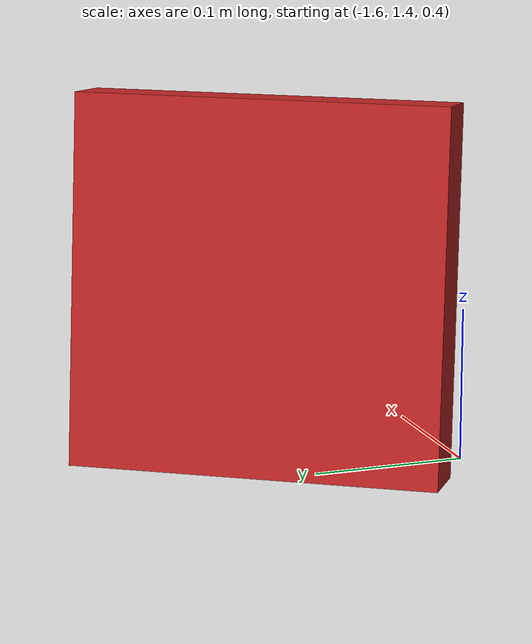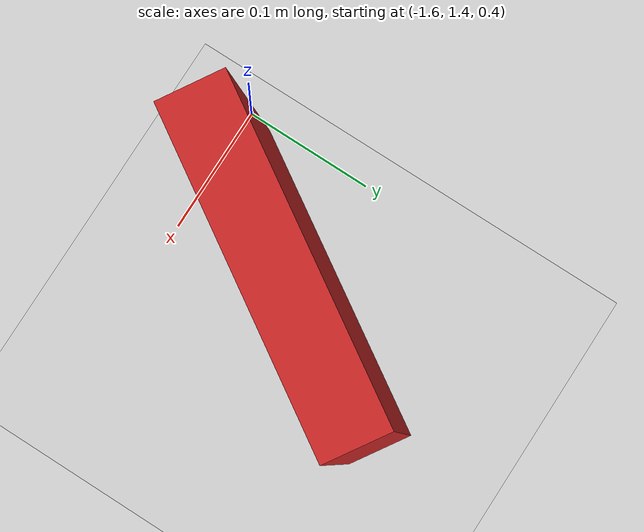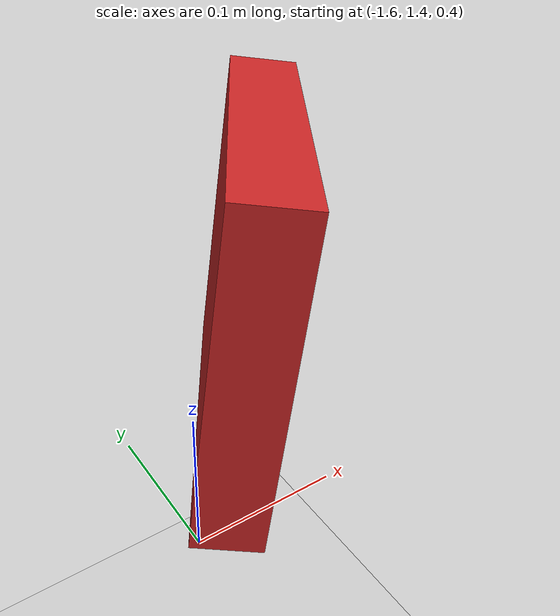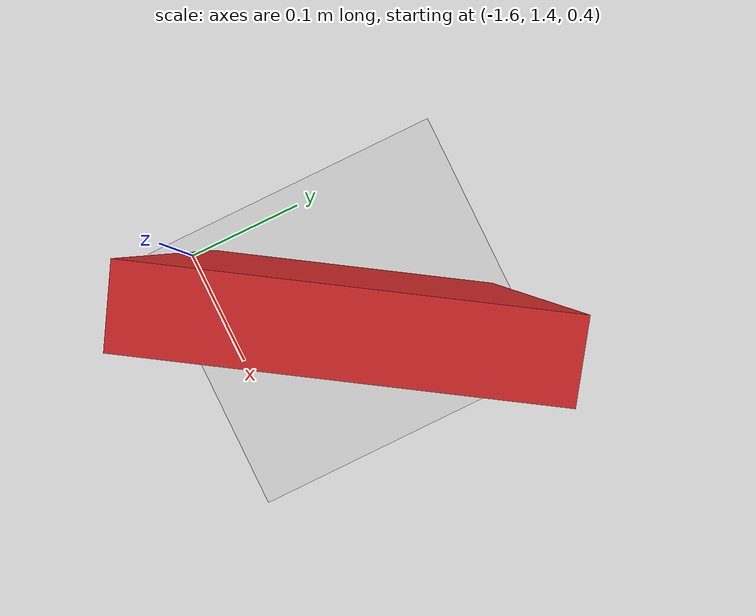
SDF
<?xml version="1.0" ?>
<sdf version="1.5">
  <world name="static_red_square_target">
    <!-- A ground plane -->
    <include>
      <uri>model://ground_plane</uri>
    </include>
    <!-- A global light source -->
    <include>
      <uri>model://sun</uri>
    </include>
    <include>
      <uri>model://deeprotor_simulation/models/red_square</uri>
      <pose>-1.5 1.5 0.5 -80 0 1 </pose>
      <name>target</name>
    </include>

    <plugin name="ros_interface_plugin" filename="librotors_gazebo_ros_interface_plugin.so"/>

    <physics type='ode'>
      <ode>
        <solver>
          <type>quick</type>
          <iters>1000</iters>
          <sor>1.3</sor>
        </solver>
        <constraints>
          <cfm>0</cfm>
          <erp>0.2</erp>
          <contact_max_correcting_vel>100</contact_max_correcting_vel>
          <contact_surface_layer>0.001</contact_surface_layer>
        </constraints>
      </ode>
      <max_step_size>0.01</max_step_size>
      <real_time_factor>1</real_time_factor>
      <real_time_update_rate>100</real_time_update_rate>
      <gravity>0 0 -9.8</gravity>
    </physics>
  </world>
</sdf>

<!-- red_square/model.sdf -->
<sdf version="1.5">
  <model name="red_square">
    <static>true</static>
    <link name="link">
      <collision name="collision">
        <geometry>
          <box>
            <normal>0 0 1</normal>
            <size>0.25 0.25 0.05</size>
          </box>
        </geometry>
        <surface>
          <friction>
            <ode>
              <mu>100</mu>
              <mu2>50</mu2>
            </ode>
          </friction>
        </surface>
      </collision>
      <visual name="visual">
        <cast_shadows>false</cast_shadows>
        <geometry>
          <box>
            <normal>0 0 1</normal>
            <size>0.25 0.25 0.05</size>
          </box>
        </geometry>
        <material>
          <script>
            <uri>file://media/materials/scripts/gazebo.material</uri>
            <name>Gazebo/Red</name>
          </script>
        </material>
      </visual>
    </link>
  </model>
</sdf>
